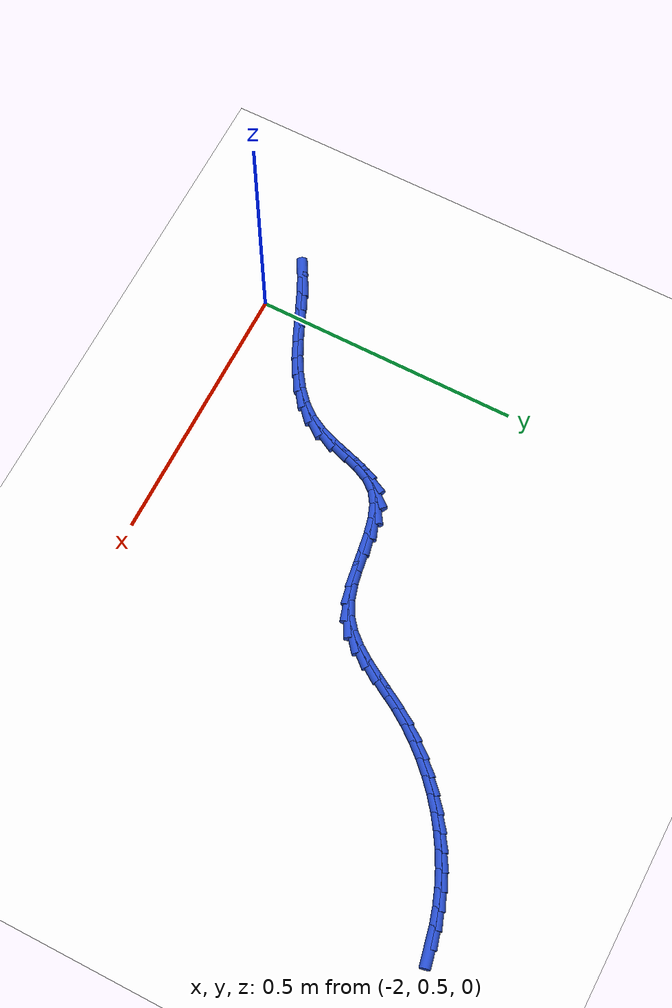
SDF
<sdf version="1.6">
 <world name="default">
  <model name="ground_plane">
   <static>1</static>
   <link name="link">
    <collision name="collision">
     <geometry><plane><normal>0 0 1</normal><size>100 100</size></plane></geometry>
     <surface><friction><ode><mu>100</mu><mu2>50</mu2></ode></friction></surface>
    </collision>
    <visual name="visual">
     <cast_shadows>0</cast_shadows>
     <geometry><plane><normal>0 0 1</normal><size>100 100</size></plane></geometry>
     <material>
      <script><uri>file://media/materials/scripts/gazebo.material</uri><name>Gazebo/WhiteGlow</name></script>
     </material>
    </visual>
   </link>
  </model>
  <model name="line">
   <link name="link_63">
    <pose>-1.083585106242758 1.29577875139734 0.01 0 1.57 0.22009898686347276</pose>
    <collision name="collision">
     <geometry><cylinder><radius>0.01</radius><length>0.08</length></cylinder></geometry>
    </collision>
    <visual name="visual">
     <material>
      <script><name>Gazebo/Blue</name><uri>file://media/materials/scripts/gazebo.material</uri></script>
     </material>
     <geometry><cylinder><radius>0.01</radius><length>0.08</length></cylinder></geometry>
    </visual>
   </link>
   <link name="link_64">
    <pose>-1.114211259127414 1.288926965552187 0.01 0 1.57 0.2874348406376471</pose>
    <collision name="collision">
     <geometry><cylinder><radius>0.01</radius><length>0.08</length></cylinder></geometry>
    </collision>
    <visual name="visual">
     <material>
      <script><name>Gazebo/Blue</name><uri>file://media/materials/scripts/gazebo.material</uri></script>
     </material>
     <geometry><cylinder><radius>0.01</radius><length>0.08</length></cylinder></geometry>
    </visual>
   </link>
   <link name="link_65">
    <pose>-1.1443480252152947 1.2800178946809913 0.01 0 1.57 0.3531305983465164</pose>
    <collision name="collision">
     <geometry><cylinder><radius>0.01</radius><length>0.08</length></cylinder></geometry>
    </collision>
    <visual name="visual">
     <material>
      <script><name>Gazebo/Blue</name><uri>file://media/materials/scripts/gazebo.material</uri></script>
     </material>
     <geometry><cylinder><radius>0.01</radius><length>0.08</length></cylinder></geometry>
    </visual>
   </link>
   <link name="link_66">
    <pose>-1.1738938791325955 1.2691278748999342 0.01 0 1.57 0.41738159373105677</pose>
    <collision name="collision">
     <geometry><cylinder><radius>0.01</radius><length>0.08</length></cylinder></geometry>
    </collision>
    <visual name="visual">
     <material>
      <script><name>Gazebo/Blue</name><uri>file://media/materials/scripts/gazebo.material</uri></script>
     </material>
     <geometry><cylinder><radius>0.01</radius><length>0.08</length></cylinder></geometry>
    </visual>
   </link>
   <link name="link_67">
    <pose>-1.202747295505513 1.256333242325197 0.01 0 1.57 0.4804163875431029</pose>
    <collision name="collision">
     <geometry><cylinder><radius>0.01</radius><length>0.08</length></cylinder></geometry>
    </collision>
    <visual name="visual">
     <material>
      <script><name>Gazebo/Blue</name><uri>file://media/materials/scripts/gazebo.material</uri></script>
     </material>
     <geometry><cylinder><radius>0.01</radius><length>0.08</length></cylinder></geometry>
    </visual>
   </link>
   <link name="link_68">
    <pose>-1.230806748960243 1.2417103330729615 0.01 0 1.57 0.5424868950441456</pose>
    <collision name="collision">
     <geometry><cylinder><radius>0.01</radius><length>0.08</length></cylinder></geometry>
    </collision>
    <visual name="visual">
     <material>
      <script><name>Gazebo/Blue</name><uri>file://media/materials/scripts/gazebo.material</uri></script>
     </material>
     <geometry><cylinder><radius>0.01</radius><length>0.08</length></cylinder></geometry>
    </visual>
   </link>
   <link name="link_69">
    <pose>-1.2579707141229823 1.2253354832594094 0.01 0 1.57 0.6038601906437397</pose>
    <collision name="collision">
     <geometry><cylinder><radius>0.01</radius><length>0.08</length></cylinder></geometry>
    </collision>
    <visual name="visual">
     <material>
      <script><name>Gazebo/Blue</name><uri>file://media/materials/scripts/gazebo.material</uri></script>
     </material>
     <geometry><cylinder><radius>0.01</radius><length>0.08</length></cylinder></geometry>
    </visual>
   </link>
   <link name="link_70">
    <pose>-1.2841376656199275 1.2072850290007229 0.01 0 1.57 0.6648117430324205</pose>
    <collision name="collision">
     <geometry><cylinder><radius>0.01</radius><length>0.08</length></cylinder></geometry>
    </collision>
    <visual name="visual">
     <material>
      <script><name>Gazebo/Blue</name><uri>file://media/materials/scripts/gazebo.material</uri></script>
     </material>
     <geometry><cylinder><radius>0.01</radius><length>0.08</length></cylinder></geometry>
    </visual>
   </link>
   <link name="link_71">
    <pose>-1.3092060780772743 1.187635306413083 0.01 0 1.57 0.7256197099627612</pose>
    <collision name="collision">
     <geometry><cylinder><radius>0.01</radius><length>0.08</length></cylinder></geometry>
    </collision>
    <visual name="visual">
     <material>
      <script><name>Gazebo/Blue</name><uri>file://media/materials/scripts/gazebo.material</uri></script>
     </material>
     <geometry><cylinder><radius>0.01</radius><length>0.08</length></cylinder></geometry>
    </visual>
   </link>
   <link name="link_72">
    <pose>-1.3330744261212186 1.1664626516126715 0.01 0 1.57 0.786559864057263</pose>
    <collision name="collision">
     <geometry><cylinder><radius>0.01</radius><length>0.08</length></cylinder></geometry>
    </collision>
    <visual name="visual">
     <material>
      <script><name>Gazebo/Blue</name><uri>file://media/materials/scripts/gazebo.material</uri></script>
     </material>
     <geometry><cylinder><radius>0.01</radius><length>0.08</length></cylinder></geometry>
    </visual>
   </link>
   <link name="link_73">
    <pose>-1.3556411843779574 1.1438434007156706 0.01 0 1.57 0.8479007077315786</pose>
    <collision name="collision">
     <geometry><cylinder><radius>0.01</radius><length>0.08</length></cylinder></geometry>
    </collision>
    <visual name="visual">
     <material>
      <script><name>Gazebo/Blue</name><uri>file://media/materials/scripts/gazebo.material</uri></script>
     </material>
     <geometry><cylinder><radius>0.01</radius><length>0.08</length></cylinder></geometry>
    </visual>
   </link>
   <link name="link_74">
    <pose>-1.3768048274736868 1.1198538898382613 0.01 0 1.57 0.909898353398594</pose>
    <collision name="collision">
     <geometry><cylinder><radius>0.01</radius><length>0.08</length></cylinder></geometry>
    </collision>
    <visual name="visual">
     <material>
      <script><name>Gazebo/Blue</name><uri>file://media/materials/scripts/gazebo.material</uri></script>
     </material>
     <geometry><cylinder><radius>0.01</radius><length>0.08</length></cylinder></geometry>
    </visual>
   </link>
   <link name="link_75">
    <pose>-1.396463830034603 1.094570455096626 0.01 0 1.57 0.9727851141280072</pose>
    <collision name="collision">
     <geometry><cylinder><radius>0.01</radius><length>0.08</length></cylinder></geometry>
    </collision>
    <visual name="visual">
     <material>
      <script><name>Gazebo/Blue</name><uri>file://media/materials/scripts/gazebo.material</uri></script>
     </material>
     <geometry><cylinder><radius>0.01</radius><length>0.08</length></cylinder></geometry>
    </visual>
   </link>
   <link name="link_76">
    <pose>-1.4145168040193807 1.0680695543337722 0.01 0 1.57 1.027722597651463</pose>
    <collision name="collision">
     <geometry><cylinder><radius>0.01</radius><length>0.08</length></cylinder></geometry>
    </collision>
    <visual name="visual">
     <material>
      <script><name>Gazebo/Blue</name><uri>file://media/materials/scripts/gazebo.material</uri></script>
     </material>
     <geometry><cylinder><radius>0.01</radius><length>0.08</length></cylinder></geometry>
    </visual>
   </link>
   <link name="link_77">
    <pose>-1.431083548650256 1.0406236982420816 0.01 0 1.57 1.0477477935533854</pose>
    <collision name="collision">
     <geometry><cylinder><radius>0.01</radius><length>0.08</length></cylinder></geometry>
    </collision>
    <visual name="visual">
     <material>
      <script><name>Gazebo/Blue</name><uri>file://media/materials/scripts/gazebo.material</uri></script>
     </material>
     <geometry><cylinder><radius>0.01</radius><length>0.08</length></cylinder></geometry>
    </visual>
   </link>
   <link name="link_78">
    <pose>-1.4469543520123456 1.0130996959826772 0.01 0 1.57 1.027129079480465</pose>
    <collision name="collision">
     <geometry><cylinder><radius>0.01</radius><length>0.08</length></cylinder></geometry>
    </collision>
    <visual name="visual">
     <material>
      <script><name>Gazebo/Blue</name><uri>file://media/materials/scripts/gazebo.material</uri></script>
     </material>
     <geometry><cylinder><radius>0.01</radius><length>0.08</length></cylinder></geometry>
    </visual>
   </link>
   <link name="link_79">
    <pose>-1.4630460681201318 0.9864765404413977 0.01 0 1.57 0.9625385239471408</pose>
    <collision name="collision">
     <geometry><cylinder><radius>0.01</radius><length>0.08</length></cylinder></geometry>
    </collision>
    <visual name="visual">
     <material>
      <script><name>Gazebo/Blue</name><uri>file://media/materials/scripts/gazebo.material</uri></script>
     </material>
     <geometry><cylinder><radius>0.01</radius><length>0.08</length></cylinder></geometry>
    </visual>
   </link>
   <link name="link_80">
    <pose>-1.480275550988097 0.9617332245040802 0.01 0 1.57 0.8484785357665837</pose>
    <collision name="collision">
     <geometry><cylinder><radius>0.01</radius><length>0.08</length></cylinder></geometry>
    </collision>
    <visual name="visual">
     <material>
      <script><name>Gazebo/Blue</name><uri>file://media/materials/scripts/gazebo.material</uri></script>
     </material>
     <geometry><cylinder><radius>0.01</radius><length>0.08</length></cylinder></geometry>
    </visual>
   </link>
   <link name="link_81">
    <pose>-1.4995596546307248 0.9398487410565638 0.01 0 1.57 0.6813414501409012</pose>
    <collision name="collision">
     <geometry><cylinder><radius>0.01</radius><length>0.08</length></cylinder></geometry>
    </collision>
    <visual name="visual">
     <material>
      <script><name>Gazebo/Blue</name><uri>file://media/materials/scripts/gazebo.material</uri></script>
     </material>
     <geometry><cylinder><radius>0.01</radius><length>0.08</length></cylinder></geometry>
    </visual>
   </link>
   <link name="link_82">
    <pose>-1.521815233062497 0.9218020829846862 0.01 0 1.57 0.4727473232534752</pose>
    <collision name="collision">
     <geometry><cylinder><radius>0.01</radius><length>0.08</length></cylinder></geometry>
    </collision>
    <visual name="visual">
     <material>
      <script><name>Gazebo/Blue</name><uri>file://media/materials/scripts/gazebo.material</uri></script>
     </material>
     <geometry><cylinder><radius>0.01</radius><length>0.08</length></cylinder></geometry>
    </visual>
   </link>
   <link name="link_83">
    <pose>-1.5478720768103136 0.9084759108808047 0.01 0 1.57 0.29879278770798157</pose>
    <collision name="collision">
     <geometry><cylinder><radius>0.01</radius><length>0.08</length></cylinder></geometry>
    </collision>
    <visual name="visual">
     <material>
      <script><name>Gazebo/Blue</name><uri>file://media/materials/scripts/gazebo.material</uri></script>
     </material>
     <geometry><cylinder><radius>0.01</radius><length>0.08</length></cylinder></geometry>
    </visual>
   </link>
   <link name="link_84">
    <pose>-1.5773374179215707 0.8994001729027663 0.01 0 1.57 0.19670213105988446</pose>
    <collision name="collision">
     <geometry><cylinder><radius>0.01</radius><length>0.08</length></cylinder></geometry>
    </collision>
    <visual name="visual">
     <material>
      <script><name>Gazebo/Blue</name><uri>file://media/materials/scripts/gazebo.material</uri></script>
     </material>
     <geometry><cylinder><radius>0.01</radius><length>0.08</length></cylinder></geometry>
    </visual>
   </link>
   <link name="link_85">
    <pose>-1.6089167483620057 0.8931070775979177 0.01 0 1.57 0.15326224470502822</pose>
    <collision name="collision">
     <geometry><cylinder><radius>0.01</radius><length>0.08</length></cylinder></geometry>
    </collision>
    <visual name="visual">
     <material>
      <script><name>Gazebo/Blue</name><uri>file://media/materials/scripts/gazebo.material</uri></script>
     </material>
     <geometry><cylinder><radius>0.01</radius><length>0.08</length></cylinder></geometry>
    </visual>
   </link>
   <link name="link_86">
    <pose>-1.6412945295142347 0.8881055640080805 0.01 0 1.57 0.16181441054198134</pose>
    <collision name="collision">
     <geometry><cylinder><radius>0.01</radius><length>0.08</length></cylinder></geometry>
    </collision>
    <visual name="visual">
     <material>
      <script><name>Gazebo/Blue</name><uri>file://media/materials/scripts/gazebo.material</uri></script>
     </material>
     <geometry><cylinder><radius>0.01</radius><length>0.08</length></cylinder></geometry>
    </visual>
   </link>
   <link name="link_87">
    <pose>-1.6731552227608735 0.8829045711750754 0.01 0 1.57 0.2255963589343561</pose>
    <collision name="collision">
     <geometry><cylinder><radius>0.01</radius><length>0.08</length></cylinder></geometry>
    </collision>
    <visual name="visual">
     <material>
      <script><name>Gazebo/Blue</name><uri>file://media/materials/scripts/gazebo.material</uri></script>
     </material>
     <geometry><cylinder><radius>0.01</radius><length>0.08</length></cylinder></geometry>
    </visual>
   </link>
   <link name="link_88">
    <pose>-1.7031832894845373 0.8760130381407231 0.01 0 1.57 0.35854792091707444</pose>
    <collision name="collision">
     <geometry><cylinder><radius>0.01</radius><length>0.08</length></cylinder></geometry>
    </collision>
    <visual name="visual">
     <material>
      <script><name>Gazebo/Blue</name><uri>file://media/materials/scripts/gazebo.material</uri></script>
     </material>
     <geometry><cylinder><radius>0.01</radius><length>0.08</length></cylinder></geometry>
    </visual>
   </link>
   <link name="link_89">
    <pose>-1.7300631910678426 0.8659399039468448 0.01 0 1.57 0.5818521169958188</pose>
    <collision name="collision">
     <geometry><cylinder><radius>0.01</radius><length>0.08</length></cylinder></geometry>
    </collision>
    <visual name="visual">
     <material>
      <script><name>Gazebo/Blue</name><uri>file://media/materials/scripts/gazebo.material</uri></script>
     </material>
     <geometry><cylinder><radius>0.01</radius><length>0.08</length></cylinder></geometry>
    </visual>
   </link>
   <link name="link_90">
    <pose>-1.7524793888934047 0.8511941076352614 0.01 0 1.57 0.8857002425255589</pose>
    <collision name="collision">
     <geometry><cylinder><radius>0.01</radius><length>0.08</length></cylinder></geometry>
    </collision>
    <visual name="visual">
     <material>
      <script><name>Gazebo/Blue</name><uri>file://media/materials/scripts/gazebo.material</uri></script>
     </material>
     <geometry><cylinder><radius>0.01</radius><length>0.08</length></cylinder></geometry>
    </visual>
   </link>
   <link name="link_91">
    <pose>-1.7693637315618143 0.8305309966875039 0.01 0 1.57 1.123137611206673</pose>
    <collision name="collision">
     <geometry><cylinder><radius>0.01</radius><length>0.08</length></cylinder></geometry>
    </collision>
    <visual name="visual">
     <material>
      <script><name>Gazebo/Blue</name><uri>file://media/materials/scripts/gazebo.material</uri></script>
     </material>
     <geometry><cylinder><radius>0.01</radius><length>0.08</length></cylinder></geometry>
    </visual>
   </link>
   <link name="link_92">
    <pose>-1.7817291825249677 0.8047787995834206 0.01 0 1.57 1.2415232364718167</pose>
    <collision name="collision">
     <geometry><cylinder><radius>0.01</radius><length>0.08</length></cylinder></geometry>
    </collision>
    <visual name="visual">
     <material>
      <script><name>Gazebo/Blue</name><uri>file://media/materials/scripts/gazebo.material</uri></script>
     </material>
     <geometry><cylinder><radius>0.01</radius><length>0.08</length></cylinder></geometry>
    </visual>
   </link>
   <link name="link_93">
    <pose>-1.7916304579209572 0.7758033758335592 0.01 0 1.57 1.267220858774652</pose>
    <collision name="collision">
     <geometry><cylinder><radius>0.01</radius><length>0.08</length></cylinder></geometry>
    </collision>
    <visual name="visual">
     <material>
      <script><name>Gazebo/Blue</name><uri>file://media/materials/scripts/gazebo.material</uri></script>
     </material>
     <geometry><cylinder><radius>0.01</radius><length>0.08</length></cylinder></geometry>
    </visual>
   </link>
   <link name="link_94">
    <pose>-1.8011300326572237 0.7454783130205354 0.01 0 1.57 1.2124690381054375</pose>
    <collision name="collision">
     <geometry><cylinder><radius>0.01</radius><length>0.08</length></cylinder></geometry>
    </collision>
    <visual name="visual">
     <material>
      <script><name>Gazebo/Blue</name><uri>file://media/materials/scripts/gazebo.material</uri></script>
     </material>
     <geometry><cylinder><radius>0.01</radius><length>0.08</length></cylinder></geometry>
    </visual>
   </link>
   <link name="link_95">
    <pose>-1.812290381641209 0.7156771987269646 0.01 0 1.57 1.0741302023269286</pose>
    <collision name="collision">
     <geometry><cylinder><radius>0.01</radius><length>0.08</length></cylinder></geometry>
    </collision>
    <visual name="visual">
     <material>
      <script><name>Gazebo/Blue</name><uri>file://media/materials/scripts/gazebo.material</uri></script>
     </material>
     <geometry><cylinder><radius>0.01</radius><length>0.08</length></cylinder></geometry>
    </visual>
   </link>
   <link name="link_96">
    <pose>-1.8271521609708803 0.688256004938152 0.01 0 1.57 0.8905589511888438</pose>
    <collision name="collision">
     <geometry><cylinder><radius>0.01</radius><length>0.08</length></cylinder></geometry>
    </collision>
    <visual name="visual">
     <material>
      <script><name>Gazebo/Blue</name><uri>file://media/materials/scripts/gazebo.material</uri></script>
     </material>
     <geometry><cylinder><radius>0.01</radius><length>0.08</length></cylinder></geometry>
    </visual>
   </link>
   <link name="link_97">
    <pose>-1.8466395812739889 0.6641693321027504 0.01 0 1.57 0.7338408375341768</pose>
    <collision name="collision">
     <geometry><cylinder><radius>0.01</radius><length>0.08</length></cylinder></geometry>
    </collision>
    <visual name="visual">
     <material>
      <script><name>Gazebo/Blue</name><uri>file://media/materials/scripts/gazebo.material</uri></script>
     </material>
     <geometry><cylinder><radius>0.01</radius><length>0.08</length></cylinder></geometry>
    </visual>
   </link>
   <link name="link_98">
    <pose>-1.870048902710158 0.6430574413181452 0.01 0 1.57 0.6120319754019956</pose>
    <collision name="collision">
     <geometry><cylinder><radius>0.01</radius><length>0.08</length></cylinder></geometry>
    </collision>
    <visual name="visual">
     <material>
      <script><name>Gazebo/Blue</name><uri>file://media/materials/scripts/gazebo.material</uri></script>
     </material>
     <geometry><cylinder><radius>0.01</radius><length>0.08</length></cylinder></geometry>
    </visual>
   </link>
   <link name="link_99">
    <pose>-1.8965476814978408 0.6244566834842964 0.01 0 1.57 0.5223226900322694</pose>
    <collision name="collision">
     <geometry><cylinder><radius>0.01</radius><length>0.08</length></cylinder></geometry>
    </collision>
    <visual name="visual">
     <material>
      <script><name>Gazebo/Blue</name><uri>file://media/materials/scripts/gazebo.material</uri></script>
     </material>
     <geometry><cylinder><radius>0.01</radius><length>0.08</length></cylinder></geometry>
    </visual>
   </link>
   <link name="link_100">
    <pose>-1.9253034738554908 0.6079034095011635 0.01 0 1.57 0.46044194950567974</pose>
    <collision name="collision">
     <geometry><cylinder><radius>0.01</radius><length>0.08</length></cylinder></geometry>
    </collision>
    <visual name="visual">
     <material>
      <script><name>Gazebo/Blue</name><uri>file://media/materials/scripts/gazebo.material</uri></script>
     </material>
     <geometry><cylinder><radius>0.01</radius><length>0.08</length></cylinder></geometry>
    </visual>
   </link>
   <link name="link_101">
    <pose>-1.9554838360015607 0.5929339702687061 0.01 0 1.57 0.4228980803918315</pose>
    <collision name="collision">
     <geometry><cylinder><radius>0.01</radius><length>0.08</length></cylinder></geometry>
    </collision>
    <visual name="visual">
     <material>
      <script><name>Gazebo/Blue</name><uri>file://media/materials/scripts/gazebo.material</uri></script>
     </material>
     <geometry><cylinder><radius>0.01</radius><length>0.08</length></cylinder></geometry>
    </visual>
   </link>
   <link name="link_102">
    <pose>-1.986256324154504 0.5790847166868843 0.01 0 1.57 0.40786255587270265</pose>
    <collision name="collision">
     <geometry><cylinder><radius>0.01</radius><length>0.08</length></cylinder></geometry>
    </collision>
    <visual name="visual">
     <material>
      <script><name>Gazebo/Blue</name><uri>file://media/materials/scripts/gazebo.material</uri></script>
     </material>
     <geometry><cylinder><radius>0.01</radius><length>0.08</length></cylinder></geometry>
    </visual>
   </link>
   <link name="link_103">
    <pose>-2.0167884945327743 0.5658919996556574 0.01 0 1.57 0.4155782332615597</pose>
    <collision name="collision">
     <geometry><cylinder><radius>0.01</radius><length>0.08</length></cylinder></geometry>
    </collision>
    <visual name="visual">
     <material>
      <script><name>Gazebo/Blue</name><uri>file://media/materials/scripts/gazebo.material</uri></script>
     </material>
     <geometry><cylinder><radius>0.01</radius><length>0.08</length></cylinder></geometry>
    </visual>
   </link>
   <link name="link_104">
    <pose>-2.046247903354824 0.5528921700749854 0.01 0 1.57 0.448833895018608</pose>
    <collision name="collision">
     <geometry><cylinder><radius>0.01</radius><length>0.08</length></cylinder></geometry>
    </collision>
    <visual name="visual">
     <material>
      <script><name>Gazebo/Blue</name><uri>file://media/materials/scripts/gazebo.material</uri></script>
     </material>
     <geometry><cylinder><radius>0.01</radius><length>0.08</length></cylinder></geometry>
    </visual>
   </link>
   <link name="link_105">
    <pose>-2.0738021068391066 0.5396215788448279 0.01 0 1.57 0.5137869523703593</pose>
    <collision name="collision">
     <geometry><cylinder><radius>0.01</radius><length>0.08</length></cylinder></geometry>
    </collision>
    <visual name="visual">
     <material>
      <script><name>Gazebo/Blue</name><uri>file://media/materials/scripts/gazebo.material</uri></script>
     </material>
     <geometry><cylinder><radius>0.01</radius><length>0.08</length></cylinder></geometry>
    </visual>
   </link>
  </model>
 </world>
</sdf>
